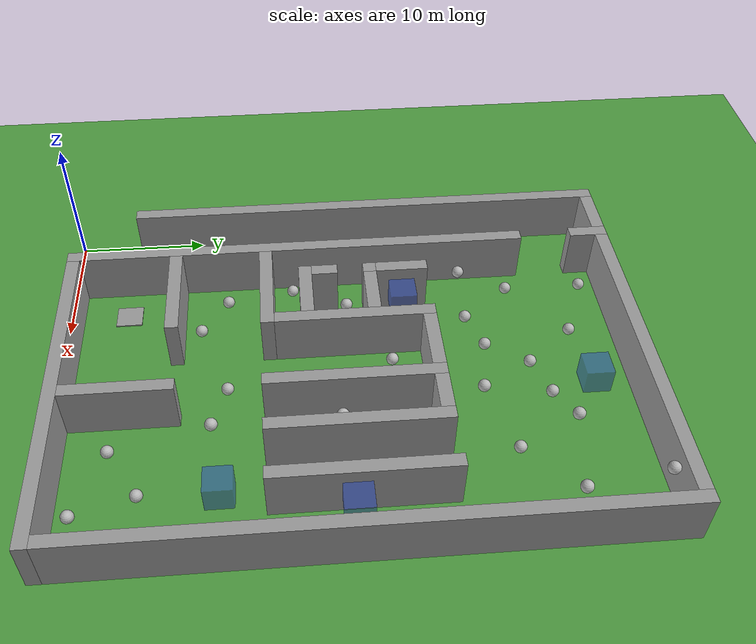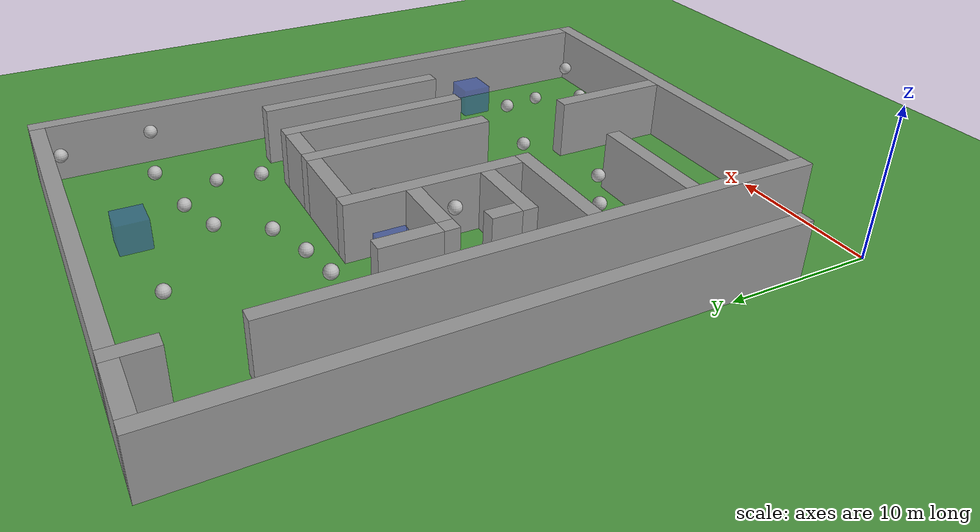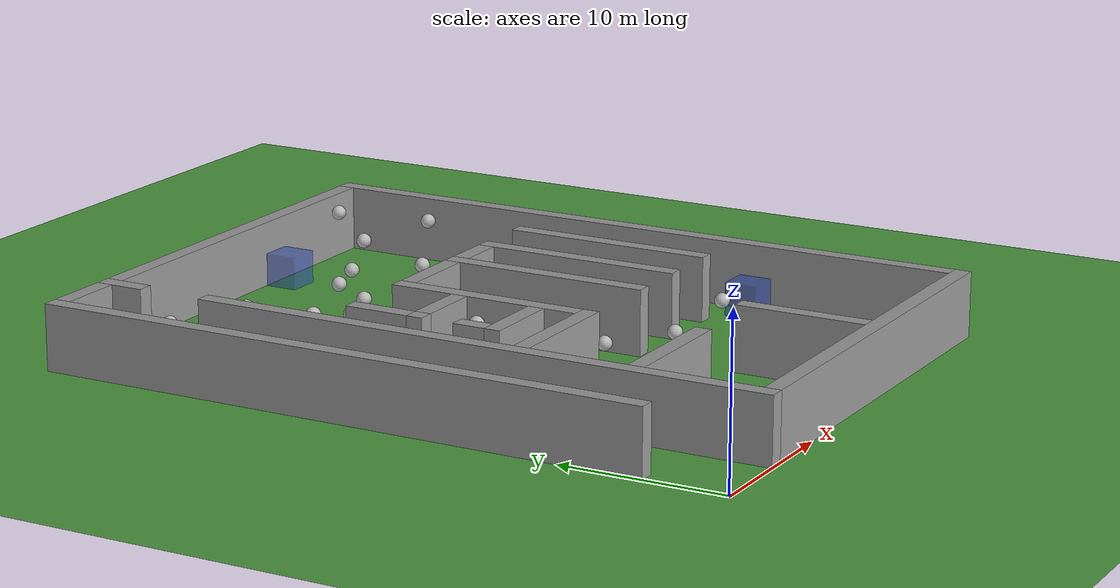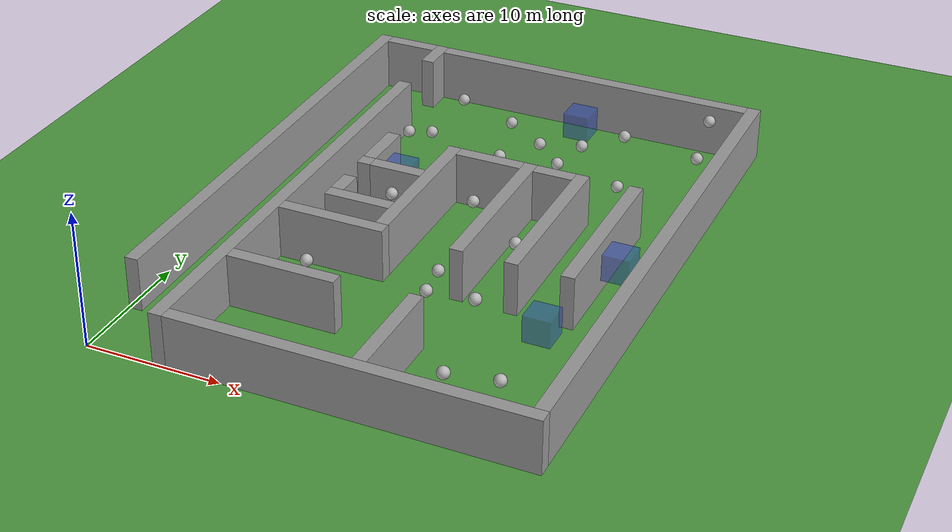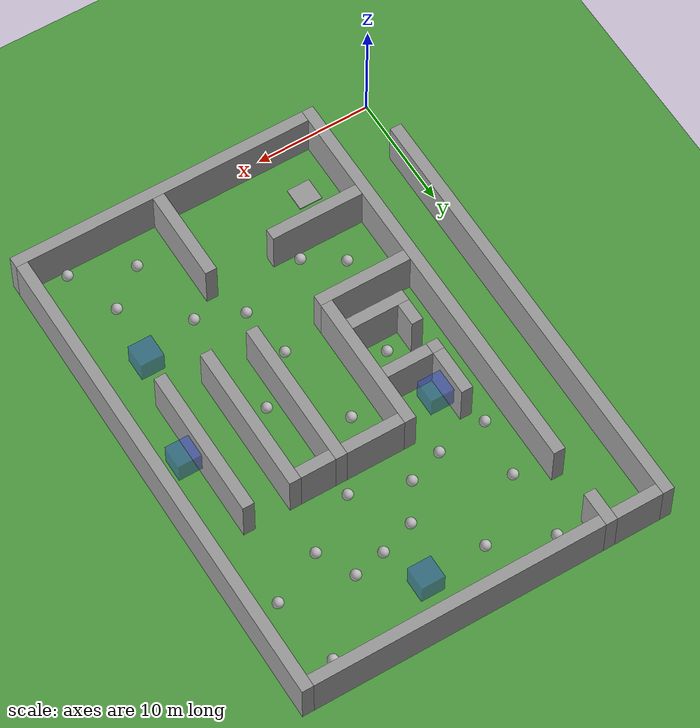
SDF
<sdf version="1.6">
 <world name="default">
  <light name="sun" type="directional">
   <pose>0 0 10 0 -0 0</pose>
   <diffuse>0.8 0.8 0.8 1</diffuse>
   <specular>0.1 0.1 0.1 1</specular>
   <attenuation>
    <range>1000</range>
    <constant>0.9</constant>
    <linear>0.01</linear>
    <quadratic>0.001</quadratic>
   </attenuation>
   <direction>-0.5 0.5 -1</direction>
  </light>
  <model name="ground_plane">
   <static>1</static>
   <link name="link">
    <collision name="collision">
     <geometry><plane><normal>0 0 1</normal><size>100 100</size></plane></geometry>
     <surface><friction><ode><mu>100</mu><mu2>50</mu2></ode></friction></surface>
    </collision>
    <visual name="visual">
     <cast_shadows>0</cast_shadows>
     <geometry><plane><normal>0 0 1</normal><size>100 100</size></plane></geometry>
     <material>
      <script><uri>file://media/materials/scripts/gazebo.material</uri><name>Gazebo/Grass</name></script>
     </material>
    </visual>
   </link>
  </model>
  <gravity>0 0 -9.8</gravity>
  <magnetic_field>6e-06 2.3e-05 -4.2e-05</magnetic_field>
  <atmosphere type="adiabatic"/>
  <physics name="default_physics" default="0" type="ode">
   <max_step_size>0.004</max_step_size>
   <real_time_factor>1</real_time_factor>
   <real_time_update_rate>250</real_time_update_rate>
  </physics>
  <scene>
   <ambient>0.4 0.4 0.4 1</ambient>
   <background>0.7 0.7 0.7 1</background>
   <shadows>1</shadows>
   <sky>
    <clouds>
     <speed>0.6</speed>
     <direction>0</direction>
     <humidity>0.5</humidity>
     <mean_size>0.5</mean_size>
     <ambient>0.8 0.8 0.8 1</ambient>
    </clouds>
   </sky>
  </scene>
  <spherical_coordinates>
   <surface_model>EARTH_WGS84</surface_model>
   <latitude_deg>0</latitude_deg>
   <longitude_deg>0</longitude_deg>
   <elevation>0</elevation>
   <heading_deg>0</heading_deg>
  </spherical_coordinates>
  <model name="wall">
   <pose>5.500000 18.000000 2 0 0 0</pose>
   <static>1</static>
   <link name="wall-link">
    <collision name="collision"><geometry><box><size>1 36 4</size></box></geometry></collision>
    <visual name="visual">
     <geometry><box><size>1 36 4</size></box></geometry>
     <material>
      <script><name>Gazebo/Grey</name><uri>file://media/materials/scripts/gazebo.material</uri></script>
     </material>
    </visual>
    <gravity>0</gravity>
   </link>
  </model>
  <model name="wall">
   <pose>19.000000 0.500000 2 0 0 0</pose>
   <static>1</static>
   <link name="wall-link">
    <collision name="collision"><geometry><box><size>26 1 4</size></box></geometry></collision>
    <visual name="visual">
     <geometry><box><size>26 1 4</size></box></geometry>
     <material>
      <script><name>Gazebo/Grey</name><uri>file://media/materials/scripts/gazebo.material</uri></script>
     </material>
    </visual>
    <gravity>0</gravity>
   </link>
  </model>
  <model name="wall">
   <pose>19.500000 5.000000 2 0 0 0</pose>
   <static>1</static>
   <link name="wall-link">
    <collision name="collision"><geometry><box><size>1 8 4</size></box></geometry></collision>
    <visual name="visual">
     <geometry><box><size>1 8 4</size></box></geometry>
     <material>
      <script><name>Gazebo/Grey</name><uri>file://media/materials/scripts/gazebo.material</uri></script>
     </material>
    </visual>
    <gravity>0</gravity>
   </link>
  </model>
  <model name="wall">
   <pose>31.500000 22.000000 2 0 0 0</pose>
   <static>1</static>
   <link name="wall-link">
    <collision name="collision"><geometry><box><size>1 42 4</size></box></geometry></collision>
    <visual name="visual">
     <geometry><box><size>1 42 4</size></box></geometry>
     <material>
      <script><name>Gazebo/Grey</name><uri>file://media/materials/scripts/gazebo.material</uri></script>
     </material>
    </visual>
    <gravity>0</gravity>
   </link>
  </model>
  <model name="wall">
   <pose>0.500000 24.000000 2 0 0 0</pose>
   <static>1</static>
   <link name="wall-link">
    <collision name="collision"><geometry><box><size>1 38 4</size></box></geometry></collision>
    <visual name="visual">
     <geometry><box><size>1 38 4</size></box></geometry>
     <material>
      <script><name>Gazebo/Grey</name><uri>file://media/materials/scripts/gazebo.material</uri></script>
     </material>
    </visual>
    <gravity>0</gravity>
   </link>
  </model>
  <model name="wall">
   <pose>10.000000 8.500000 2 0 0 0</pose>
   <static>1</static>
   <link name="wall-link">
    <collision name="collision"><geometry><box><size>8 1 4</size></box></geometry></collision>
    <visual name="visual">
     <geometry><box><size>8 1 4</size></box></geometry>
     <material>
      <script><name>Gazebo/Grey</name><uri>file://media/materials/scripts/gazebo.material</uri></script>
     </material>
    </visual>
    <gravity>0</gravity>
   </link>
  </model>
  <model name="wall">
   <pose>10.000000 15.500000 2 0 0 0</pose>
   <static>1</static>
   <link name="wall-link">
    <collision name="collision"><geometry><box><size>8 1 4</size></box></geometry></collision>
    <visual name="visual">
     <geometry><box><size>8 1 4</size></box></geometry>
     <material>
      <script><name>Gazebo/Grey</name><uri>file://media/materials/scripts/gazebo.material</uri></script>
     </material>
    </visual>
    <gravity>0</gravity>
   </link>
  </model>
  <model name="wall">
   <pose>19.500000 21.500000 2 0 0 0</pose>
   <static>1</static>
   <link name="wall-link">
    <collision name="collision"><geometry><box><size>1 13 4</size></box></geometry></collision>
    <visual name="visual">
     <geometry><box><size>1 13 4</size></box></geometry>
     <material>
      <script><name>Gazebo/Grey</name><uri>file://media/materials/scripts/gazebo.material</uri></script>
     </material>
    </visual>
    <gravity>0</gravity>
   </link>
  </model>
  <model name="wall">
   <pose>23.500000 21.500000 2 0 0 0</pose>
   <static>1</static>
   <link name="wall-link">
    <collision name="collision"><geometry><box><size>1 13 4</size></box></geometry></collision>
    <visual name="visual">
     <geometry><box><size>1 13 4</size></box></geometry>
     <material>
      <script><name>Gazebo/Grey</name><uri>file://media/materials/scripts/gazebo.material</uri></script>
     </material>
    </visual>
    <gravity>0</gravity>
   </link>
  </model>
  <model name="wall">
   <pose>27.500000 21.500000 2 0 0 0</pose>
   <static>1</static>
   <link name="wall-link">
    <collision name="collision"><geometry><box><size>1 13 4</size></box></geometry></collision>
    <visual name="visual">
     <geometry><box><size>1 13 4</size></box></geometry>
     <material>
      <script><name>Gazebo/Grey</name><uri>file://media/materials/scripts/gazebo.material</uri></script>
     </material>
    </visual>
    <gravity>0</gravity>
   </link>
  </model>
  <model name="wall">
   <pose>13.500000 22.000000 2 0 0 0</pose>
   <static>1</static>
   <link name="wall-link">
    <collision name="collision"><geometry><box><size>1 12 4</size></box></geometry></collision>
    <visual name="visual">
     <geometry><box><size>1 12 4</size></box></geometry>
     <material>
      <script><name>Gazebo/Grey</name><uri>file://media/materials/scripts/gazebo.material</uri></script>
     </material>
    </visual>
    <gravity>0</gravity>
   </link>
  </model>
  <model name="wall">
   <pose>10.500000 18.500000 2 0 0 0</pose>
   <static>1</static>
   <link name="wall-link">
    <collision name="collision"><geometry><box><size>5 1 4</size></box></geometry></collision>
    <visual name="visual">
     <geometry><box><size>5 1 4</size></box></geometry>
     <material>
      <script><name>Gazebo/Grey</name><uri>file://media/materials/scripts/gazebo.material</uri></script>
     </material>
    </visual>
    <gravity>0</gravity>
   </link>
  </model>
  <model name="wall">
   <pose>8.500000 20.000000 2 0 0 0</pose>
   <static>1</static>
   <link name="wall-link">
    <collision name="collision"><geometry><box><size>1 2 4</size></box></geometry></collision>
    <visual name="visual">
     <geometry><box><size>1 2 4</size></box></geometry>
     <material>
      <script><name>Gazebo/Grey</name><uri>file://media/materials/scripts/gazebo.material</uri></script>
     </material>
    </visual>
    <gravity>0</gravity>
   </link>
  </model>
  <model name="wall">
   <pose>8.500000 23.500000 2 0 0 0</pose>
   <static>1</static>
   <link name="wall-link">
    <collision name="collision"><geometry><box><size>1 1 4</size></box></geometry></collision>
    <visual name="visual">
     <geometry><box><size>1 1 4</size></box></geometry>
     <material>
      <script><name>Gazebo/Grey</name><uri>file://media/materials/scripts/gazebo.material</uri></script>
     </material>
    </visual>
    <gravity>0</gravity>
   </link>
  </model>
  <model name="wall">
   <pose>11.000000 23.500000 2 0 0 0</pose>
   <static>1</static>
   <link name="wall-link">
    <collision name="collision"><geometry><box><size>4 1 4</size></box></geometry></collision>
    <visual name="visual">
     <geometry><box><size>4 1 4</size></box></geometry>
     <material>
      <script><name>Gazebo/Grey</name><uri>file://media/materials/scripts/gazebo.material</uri></script>
     </material>
    </visual>
    <gravity>0</gravity>
   </link>
  </model>
  <model name="wall">
   <pose>8.500000 26.000000 2 0 0 0</pose>
   <static>1</static>
   <link name="wall-link">
    <collision name="collision"><geometry><box><size>1 4 4</size></box></geometry></collision>
    <visual name="visual">
     <geometry><box><size>1 4 4</size></box></geometry>
     <material>
      <script><name>Gazebo/Grey</name><uri>file://media/materials/scripts/gazebo.material</uri></script>
     </material>
    </visual>
    <gravity>0</gravity>
   </link>
  </model>
  <model name="wall">
   <pose>16.500000 27.500000 2 0 0 0</pose>
   <static>1</static>
   <link name="wall-link">
    <collision name="collision"><geometry><box><size>5 1 4</size></box></geometry></collision>
    <visual name="visual">
     <geometry><box><size>5 1 4</size></box></geometry>
     <material>
      <script><name>Gazebo/Grey</name><uri>file://media/materials/scripts/gazebo.material</uri></script>
     </material>
    </visual>
    <gravity>0</gravity>
   </link>
  </model>
  <model name="wall">
   <pose>21.500000 27.500000 2 0 0 0</pose>
   <static>1</static>
   <link name="wall-link">
    <collision name="collision"><geometry><box><size>3 1 4</size></box></geometry></collision>
    <visual name="visual">
     <geometry><box><size>3 1 4</size></box></geometry>
     <material>
      <script><name>Gazebo/Grey</name><uri>file://media/materials/scripts/gazebo.material</uri></script>
     </material>
    </visual>
    <gravity>0</gravity>
   </link>
  </model>
  <model name="wall">
   <pose>5.500000 41.500000 2 0 0 0</pose>
   <static>1</static>
   <link name="wall-link">
    <collision name="collision"><geometry><box><size>1 3 4</size></box></geometry></collision>
    <visual name="visual">
     <geometry><box><size>1 3 4</size></box></geometry>
     <material>
      <script><name>Gazebo/Grey</name><uri>file://media/materials/scripts/gazebo.material</uri></script>
     </material>
    </visual>
    <gravity>0</gravity>
   </link>
  </model>
  <model name="wall">
   <pose>3.000000 42.500000 2 0 0 0</pose>
   <static>1</static>
   <link name="wall-link">
    <collision name="collision"><geometry><box><size>4 1 4</size></box></geometry></collision>
    <visual name="visual">
     <geometry><box><size>4 1 4</size></box></geometry>
     <material>
      <script><name>Gazebo/Grey</name><uri>file://media/materials/scripts/gazebo.material</uri></script>
     </material>
    </visual>
    <gravity>0</gravity>
   </link>
  </model>
  <model name="wall">
   <pose>18.500000 42.500000 2 0 0 0</pose>
   <static>1</static>
   <link name="wall-link">
    <collision name="collision"><geometry><box><size>25 1 4</size></box></geometry></collision>
    <visual name="visual">
     <geometry><box><size>25 1 4</size></box></geometry>
     <material>
      <script><name>Gazebo/Grey</name><uri>file://media/materials/scripts/gazebo.material</uri></script>
     </material>
    </visual>
    <gravity>0</gravity>
   </link>
  </model>
  <include>
   <uri>model://dynamic_obstacle</uri>
   <name>dynamic_obstacle282</name>
   <pose>28.5 2.5 2 0 0 1.57</pose>
  </include>
  <model name="goal">
   <pose>8.5 4.5 0.05 0 -0 0</pose>
   <static>1</static>
   <link name="link">
    <collision name="collision"><geometry><box><size>2.0 2.0 0.1</size></box></geometry></collision>
    <visual name="visual">
     <geometry><box><size>2.0 2.0 0.1</size></box></geometry>
     <material>
      <script><name>Gazebo/Grey</name><uri>file://media/materials/scripts/gazebo.material</uri></script>
     </material>
    </visual>
   </link>
  </model>
  <include>
   <uri>model://dynamic_obstacle</uri>
   <name>dynamic_obstacle234</name>
   <pose>23.5 4.5 2 0 0 1.57</pose>
  </include>
  <include>
   <uri>model://dynamic_obstacle</uri>
   <name>dynamic_obstacle266</name>
   <pose>26.5 6.5 1 0 0 1.57</pose>
  </include>
  <include>
   <uri>model://dynamic_obstacle</uri>
   <name>dynamic_obstacle1210</name>
   <pose>12.5 10.5 2 0 0 1.57</pose>
  </include>
  <include>
   <uri>model://dynamic_obstacle</uri>
   <name>dynamic_obstacle2211</name>
   <pose>22.5 11.5 3 0 0 1.57</pose>
  </include>
  <include>
   <uri>model://dynamic_obstacle</uri>
   <name>dynamic_obstacle912</name>
   <pose>9.5 12.5 2 0 0 1.57</pose>
  </include>
  <include>
   <uri>model://dynamic_obstacle</uri>
   <name>dynamic_obstacle1812</name>
   <pose>18.5 12.5 2 0 0 1.57</pose>
  </include>
  <include><uri>model://boostbox</uri><pose>27 12 2 0 -0 0</pose></include>
  <include>
   <uri>model://dynamic_obstacle</uri>
   <name>dynamic_obstacle1716</name>
   <pose>17.5 16.5 1 0 0 1.57</pose>
  </include>
  <include>
   <uri>model://dynamic_obstacle</uri>
   <name>dynamic_obstacle717</name>
   <pose>7.5 17.5 1 0 0 1.57</pose>
  </include>
  <include>
   <uri>model://dynamic_obstacle</uri>
   <name>dynamic_obstacle2120</name>
   <pose>21.5 20.5 2 0 0 1.57</pose>
  </include>
  <include>
   <uri>model://dynamic_obstacle</uri>
   <name>dynamic_obstacle1121</name>
   <pose>11.5 21.5 3 0 0 1.57</pose>
  </include>
  <include><uri>model://boostbox</uri><pose>29 21 2 0 -0 0</pose></include>
  <include>
   <uri>model://dynamic_obstacle</uri>
   <name>dynamic_obstacle1624</name>
   <pose>16.5 24.5 2 0 0 1.57</pose>
  </include>
  <include><uri>model://boostbox</uri><pose>10 26 2 0 -0 0</pose></include>
  <include>
   <uri>model://dynamic_obstacle</uri>
   <name>dynamic_obstacle830</name>
   <pose>8.5 30.5 3 0 0 1.57</pose>
  </include>
  <include>
   <uri>model://dynamic_obstacle</uri>
   <name>dynamic_obstacle1230</name>
   <pose>12.5 30.5 2 0 0 1.57</pose>
  </include>
  <include>
   <uri>model://dynamic_obstacle</uri>
   <name>dynamic_obstacle2030</name>
   <pose>20.5 30.5 3 0 0 1.57</pose>
  </include>
  <include>
   <uri>model://dynamic_obstacle</uri>
   <name>dynamic_obstacle1531</name>
   <pose>15.5 31.5 2 0 0 1.57</pose>
  </include>
  <include>
   <uri>model://dynamic_obstacle</uri>
   <name>dynamic_obstacle2432</name>
   <pose>24.5 32.5 1 0 0 1.57</pose>
  </include>
  <include>
   <uri>model://dynamic_obstacle</uri>
   <name>dynamic_obstacle834</name>
   <pose>8.5 34.5 1 0 0 1.57</pose>
  </include>
  <include>
   <uri>model://dynamic_obstacle</uri>
   <name>dynamic_obstacle1734</name>
   <pose>17.5 34.5 2 0 0 1.57</pose>
  </include>
  <include>
   <uri>model://dynamic_obstacle</uri>
   <name>dynamic_obstacle2035</name>
   <pose>20.5 35.5 2 0 0 1.57</pose>
  </include>
  <include>
   <uri>model://dynamic_obstacle</uri>
   <name>dynamic_obstacle2935</name>
   <pose>29.5 35.5 3 0 0 1.57</pose>
  </include>
  <include>
   <uri>model://dynamic_obstacle</uri>
   <name>dynamic_obstacle2336</name>
   <pose>23.5 36.5 3 0 0 1.57</pose>
  </include>
  <include>
   <uri>model://dynamic_obstacle</uri>
   <name>dynamic_obstacle1338</name>
   <pose>13.5 38.5 1 0 0 1.57</pose>
  </include>
  <include><uri>model://boostbox</uri><pose>19 39 2 0 -0 0</pose></include>
  <include>
   <uri>model://dynamic_obstacle</uri>
   <name>dynamic_obstacle840</name>
   <pose>8.5 40.5 1 0 0 1.57</pose>
  </include>
  <include>
   <uri>model://dynamic_obstacle</uri>
   <name>dynamic_obstacle2841</name>
   <pose>28.5 41.5 3 0 0 1.57</pose>
  </include>
 </world>
</sdf>

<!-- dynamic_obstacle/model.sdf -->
<sdf version="1.6">
  <model name="dynamic_obstacle">
    <link name="base">
      <gravity>false</gravity>
      <inertial>
        <mass>1000</mass>
        <inertia>
          <ixx>81</ixx>
          <ixy></ixy>
          <ixz></ixz>
          <iyy>81</iyy>
          <iyz></iyz>
          <izz>81</izz>
        </inertia>
      </inertial>
      <collision name="collision">
        <geometry>
          <box>
            <size>0.90 0.90 0.90</size>
          </box>
        </geometry>
      </collision>
      <visual name="visual">
        <geometry>
          <sphere>
            <radius>0.45</radius>
          </sphere>
        </geometry>
      </visual>
    </link>
    <plugin name="dynamic_obstacle" filename="libdynamic_obstacle.so">
      <speed>1</speed>
      <altitude>2</altitude>
    </plugin>
  </model>
</sdf>

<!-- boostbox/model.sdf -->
<sdf version="1.6">
  <model name="boostbox">
    <link name="base">
      <gravity>false</gravity>
      <visual name="visual">
        <geometry>
          <box>
            <size>2 2 2</size>
          </box>
        </geometry>
        <material>
          <script>
            <name>Gazebo/BlueTransparent</name>
            <uri>file://media/materials/scripts/gazebo.material</uri>
          </script>
        </material>
      </visual>
    </link>
  </model>
</sdf>
